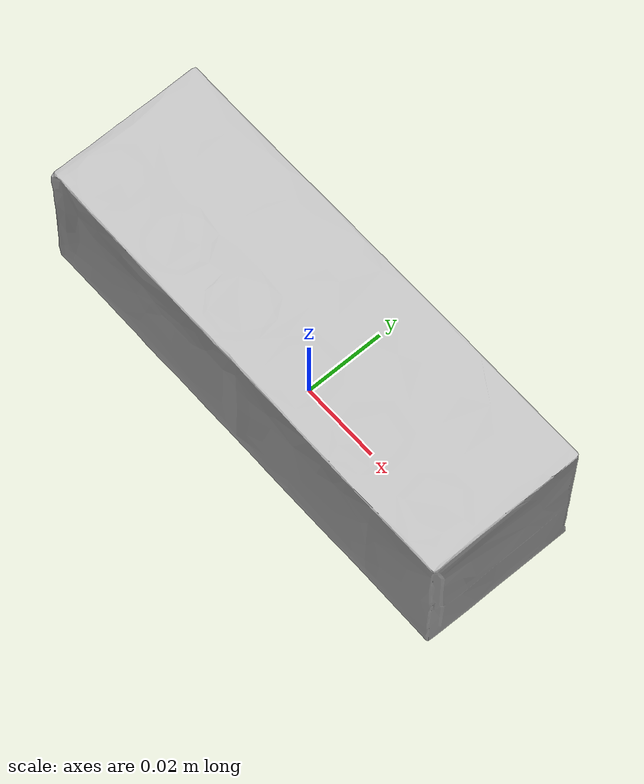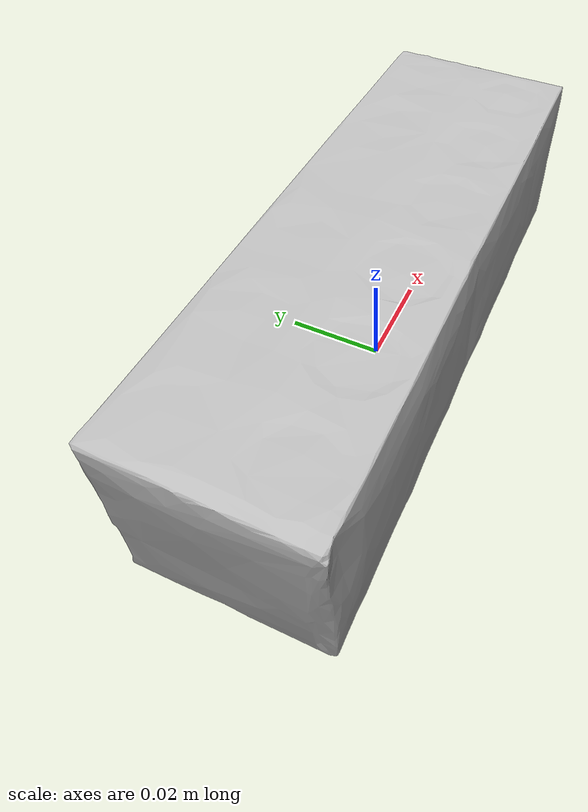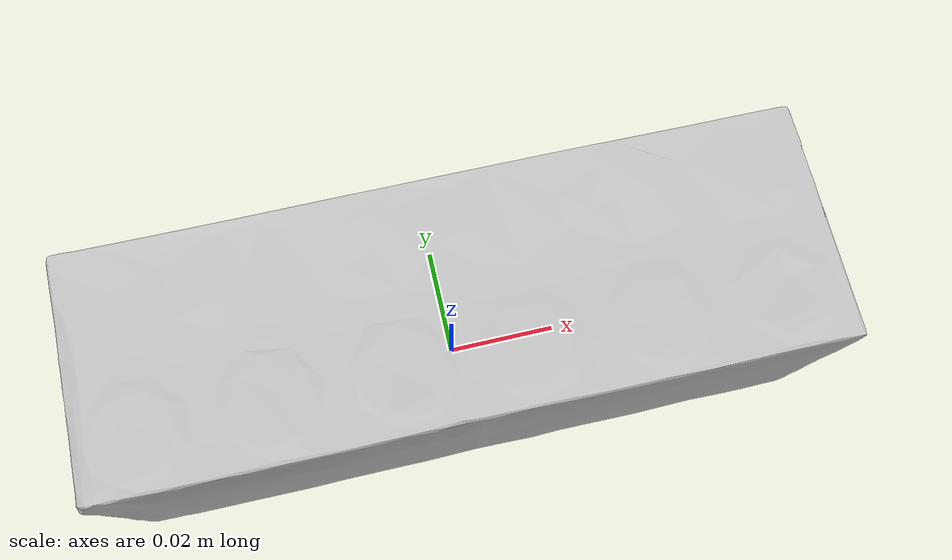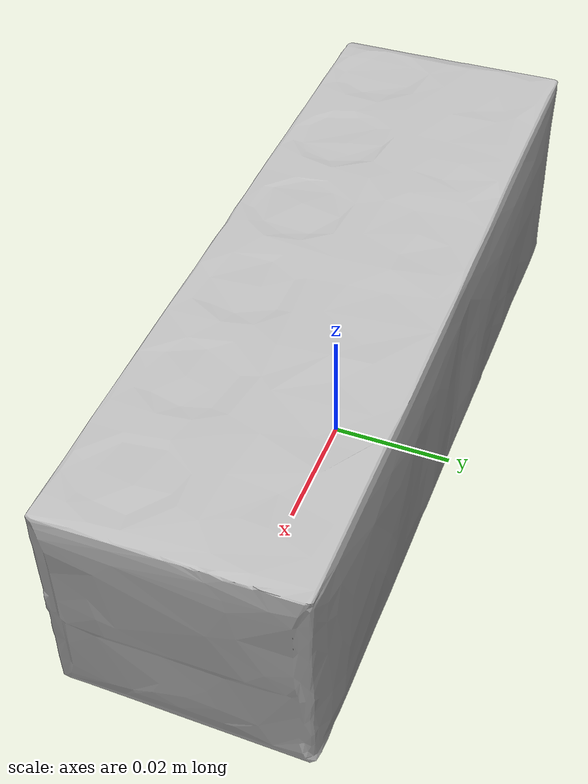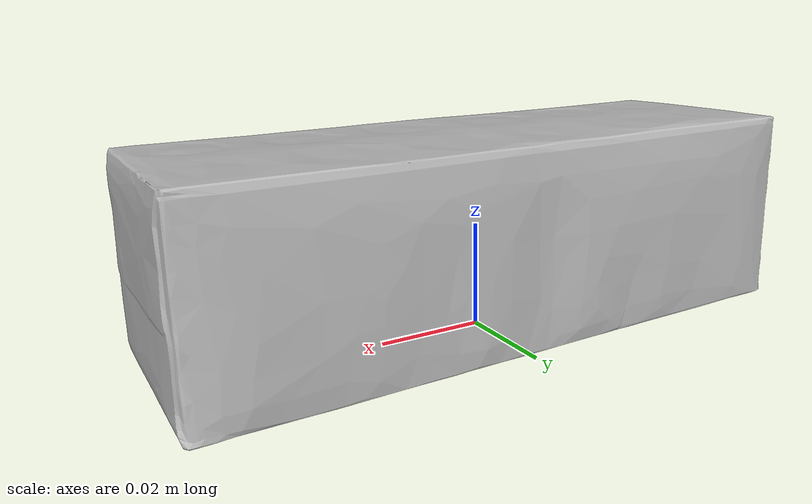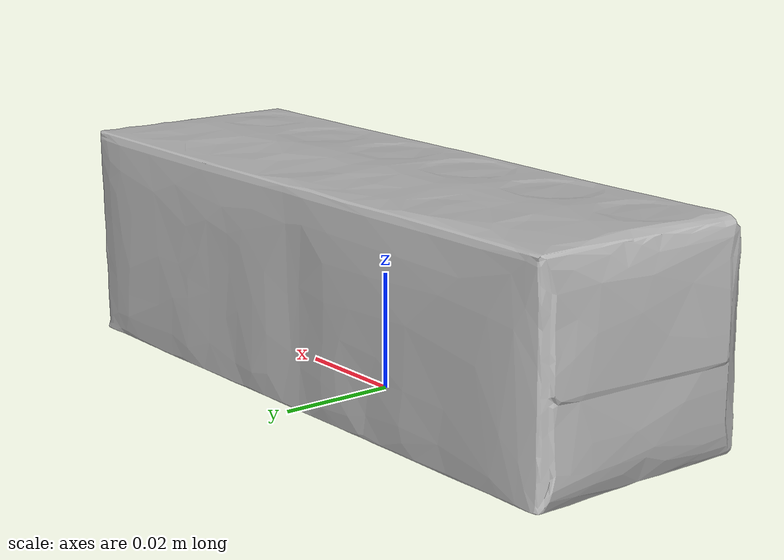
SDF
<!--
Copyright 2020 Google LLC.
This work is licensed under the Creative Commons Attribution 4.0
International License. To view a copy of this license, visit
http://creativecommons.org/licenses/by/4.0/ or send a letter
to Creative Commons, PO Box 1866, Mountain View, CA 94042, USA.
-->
<?xml version="1.0" ?>
<sdf version="1.6">
  <model name="pepsi2">

    <link name="link_0">

      <!-- VISUAL -->
      <visual name="visual">
        <geometry>
          <mesh>
            <uri>meshes/model.obj</uri>
            <scale>0.3 0.3 0.3</scale>
          </mesh>
        </geometry>
      </visual>

      <!-- COLLISION with FRICTION -->
      <collision name="collision_0">
        <geometry>
          <mesh>
            <uri>meshes/model.obj</uri>
            <scale>0.3 0.3 0.3</scale>
          </mesh>
        </geometry>

        <surface>
          <friction>
            <ode>
              <!-- Sliding friction -->
              <mu>1.2</mu>
              <mu2>1.2</mu2>

              <!-- Direction of friction (optional but good) -->
              <fdir1>1 0 0</fdir1>

              <!-- Torsional (rolling) friction -->
              <slip1>0.0</slip1>
              <slip2>0.0</slip2>
            </ode>
          </friction>

          <contact>
            <!-- Improves contact stability -->
            <kp>100000</kp>
            <kd>10</kd>
          </contact>
        </surface>
      </collision>

    </link>
  </model>
</sdf>
